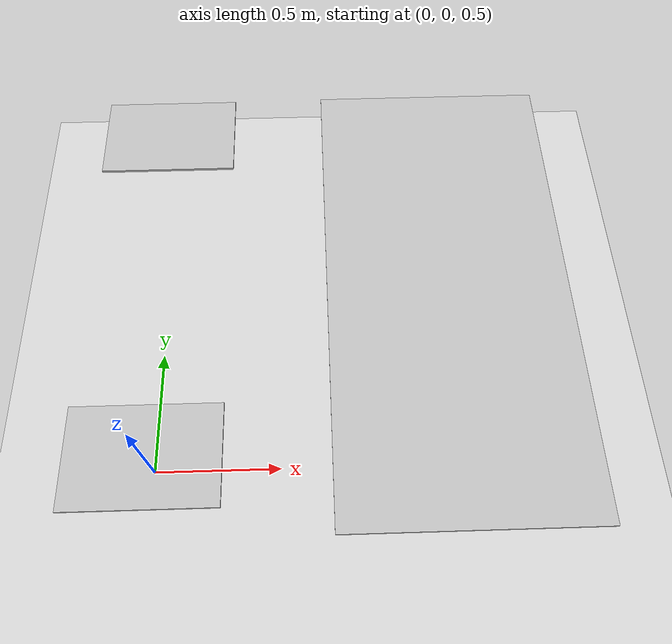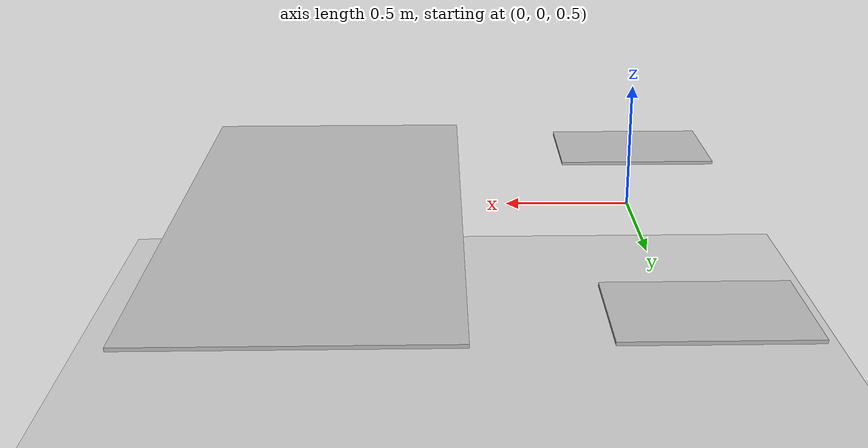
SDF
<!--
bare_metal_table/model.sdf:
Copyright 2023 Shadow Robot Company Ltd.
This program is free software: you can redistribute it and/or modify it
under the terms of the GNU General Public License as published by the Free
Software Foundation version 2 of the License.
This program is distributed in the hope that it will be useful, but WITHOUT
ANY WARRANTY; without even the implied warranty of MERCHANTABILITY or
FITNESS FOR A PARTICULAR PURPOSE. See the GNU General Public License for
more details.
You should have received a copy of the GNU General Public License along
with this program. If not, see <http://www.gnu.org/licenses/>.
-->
<?xml version="1.0" ?>
<sdf version="1.4">
  <world name="default">
    <include>
      <uri>model://ground_plane</uri>
      <pose>-0.20 0.60 0.0 0 0 0</pose>
    </include>
    <light type="directional" name="light">
      <pose frame=''>0 4 2.5 -1.0 0 0</pose>
      <diffuse>1.0 1.0 1.0 1</diffuse>
      <specular>0.2 0.2 0.2 1</specular>
      <attenuation>
        <range>20</range>
        <constant>0.9</constant>
        <linear>0.01</linear>
        <quadratic>0.001</quadratic>
      </attenuation>
      <direction>0 0 -1</direction>
      <cast_shadows>1</cast_shadows>
    </light>
    <include>
      <uri>model://bare_metal_table</uri>
      <static>true</static>
      <name>bare_metal_table</name>
      <pose>0.0 0.0 0.755 0 0 0</pose>
    </include>
    <include>
      <uri>model://bare_metal_table</uri>
      <static>true</static>
      <name>bare_metal_table</name>
      <pose>0.0 1.5 0.755 0 0 0</pose>
    </include>
    <include>
      <uri>model://bimanual_secondary_table</uri>
      <static>true</static>
      <name>bimanual_secondary_table</name>
      <pose>1.20 0.70 0.755 0 0 0</pose>
    </include>
    <physics type="ode">
      <gravity>0.000000 0.000000 -9.810000</gravity>
      <ode>
        <solver>
          <type>quick</type>
          <iters>100</iters>
          <precon_iters>0</precon_iters>
          <sor>1.000000</sor>
        </solver>
        <constraints>
          <cfm>0.000000</cfm>
          <erp>0.200000</erp>
          <contact_max_correcting_vel>0.000000</contact_max_correcting_vel>
          <contact_surface_layer>0.00000</contact_surface_layer>
        </constraints>
      </ode>
      <real_time_update_rate>0.000000</real_time_update_rate>
      <max_step_size>0.001000</max_step_size>
    </physics>
    <gui fullscreen='0'>
      <camera name='user_camera'>
        <pose frame=''>0.6991 3.5905 0.992 0.0 0.235 -1.57</pose>
        <view_controller>orbit</view_controller>
        <projection_type>perspective</projection_type>
      </camera>
    </gui>
  </world>
</sdf>

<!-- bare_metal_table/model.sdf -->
<sdf version="1.4">
  <model name="bare_metal_table">
    <static>true</static>
    <link name="link">
      <inertial>
        <mass>20</mass>
      </inertial>
      <collision name="collision">
        <pose>0.0 0.0 0.0 0 0.0 0.0</pose>
        <geometry>
          <mesh>
            <uri>model://bare_metal_table/meshes/bare_metal_table.stl</uri>
          </mesh>
        </geometry>
      </collision>
      <visual name="visual">
        <pose>0.0 0.0 0.0 0 0.0 0.0</pose>
        <geometry>
          <mesh>
            <uri>model://bare_metal_table/meshes/bare_metal_table.stl</uri>
          </mesh>
        </geometry>
      </visual>
    </link>
  </model>
</sdf>

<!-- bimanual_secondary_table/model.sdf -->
<sdf version="1.4">
  <model name="bimanual_secondary_table">
    <static>true</static>
    <link name="link">
      <inertial>
        <mass>20</mass>
      </inertial>
      <collision name="collision">
        <pose>0.0 0.0 0.0 0 0.0 0.0</pose>
        <geometry>
          <mesh>
            <uri>model://bimanual_secondary_table/meshes/bimanual_secondary_table.stl</uri>
          </mesh>
        </geometry>
      </collision>
      <visual name="visual">
        <pose>0.0 0.0 0.0 0 0.0 0.0</pose>
        <geometry>
          <mesh>
            <uri>model://bimanual_secondary_table/meshes/bimanual_secondary_table.stl</uri>
          </mesh>
        </geometry>
      </visual>
    </link>
  </model>
</sdf>
